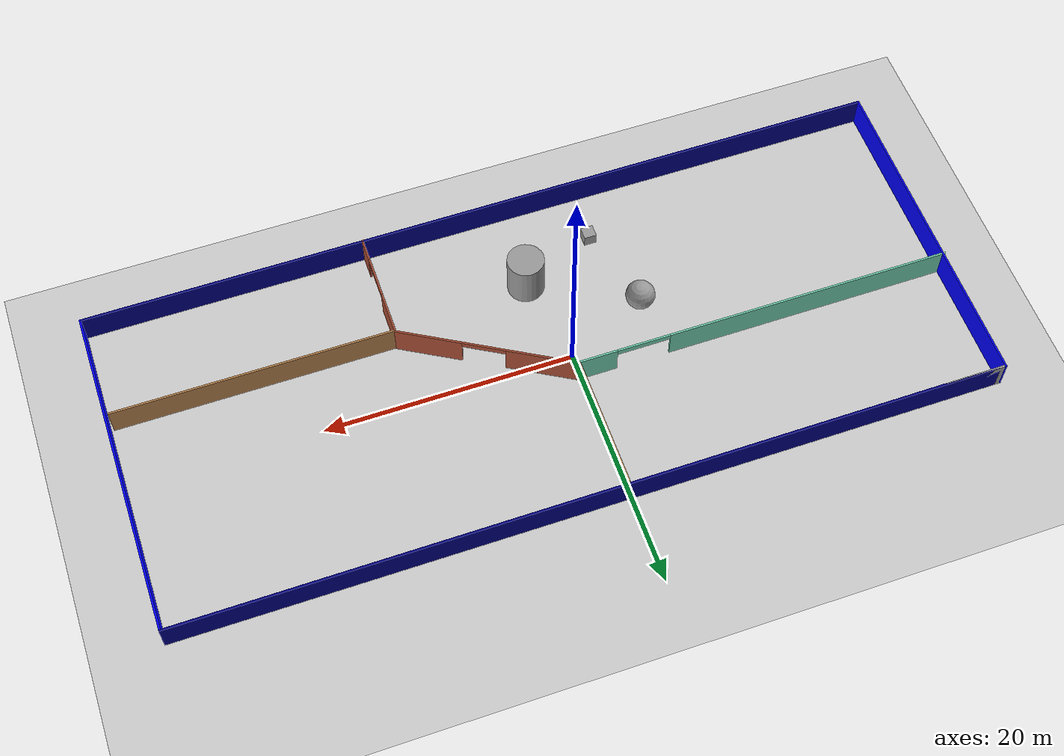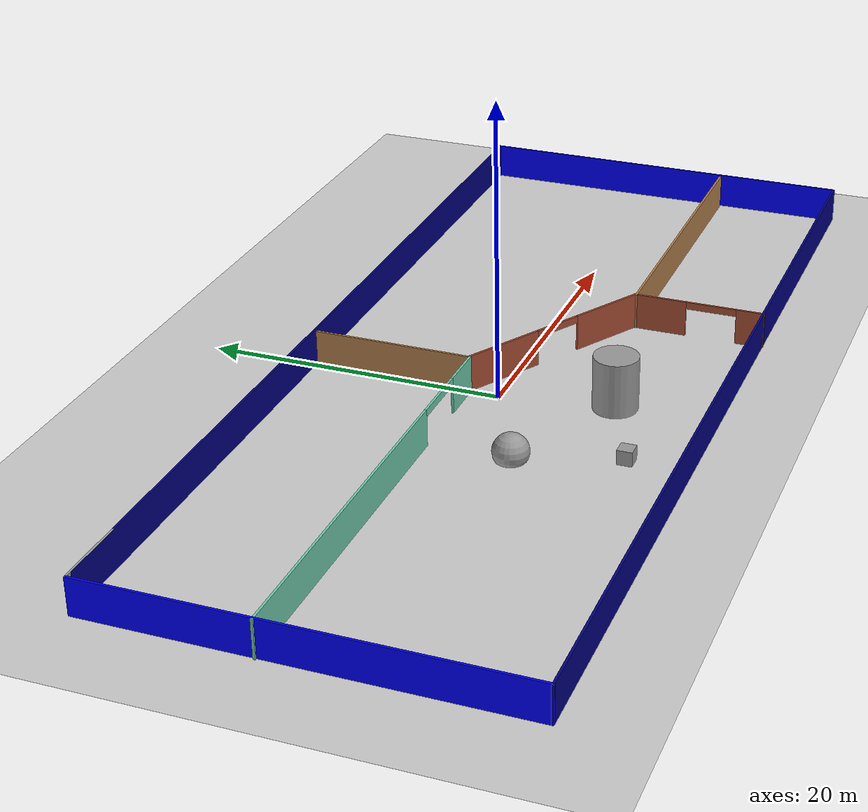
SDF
<sdf version="1.6">
 <world name="default">
  <model name="ground_plane">
   <static>1</static>
   <link name="link">
    <collision name="collision">
     <geometry><plane><normal>0 0 1</normal><size>100 100</size></plane></geometry>
     <surface>
      <contact><collide_bitmask>65535</collide_bitmask></contact>
      <friction><ode><mu>100</mu><mu2>50</mu2></ode></friction>
     </surface>
    </collision>
    <visual name="visual">
     <cast_shadows>0</cast_shadows>
     <geometry><plane><normal>0 0 1</normal><size>100 100</size></plane></geometry>
     <material>
      <script><uri>file://media/materials/scripts/gazebo.material</uri><name>Gazebo/Grey</name></script>
     </material>
    </visual>
   </link>
  </model>
  <model name="new_world">
   <pose>2.44465 -0.642156 0 0 -0 0</pose>
   <link name="Wall_0">
    <collision name="Wall_0_Collision">
     <geometry><box><size>65.25 0.15 2.5</size></box></geometry>
     <pose>0 0 1.25 0 -0 0</pose>
    </collision>
    <visual name="Wall_0_Visual">
     <pose>0 0 1.25 0 -0 0</pose>
     <geometry><box><size>65.25 0.15 2.5</size></box></geometry>
     <material>
      <script><uri>file://media/materials/scripts/gazebo.material</uri><name>Gazebo/Grey</name></script>
      <ambient>0 0 0.498039 1</ambient>
     </material>
     <meta><layer>0</layer></meta>
    </visual>
    <pose>0.3105 13.567 0 0 -0 0</pose>
   </link>
   <link name="Wall_1">
    <collision name="Wall_1_Collision">
     <geometry><box><size>27.25 0.15 2.5</size></box></geometry>
     <pose>0 0 1.25 0 -0 0</pose>
    </collision>
    <visual name="Wall_1_Visual">
     <pose>0 0 1.25 0 -0 0</pose>
     <geometry><box><size>27.25 0.15 2.5</size></box></geometry>
     <material>
      <script><uri>file://media/materials/scripts/gazebo.material</uri><name>Gazebo/Grey</name></script>
      <ambient>0 0 1 1</ambient>
     </material>
     <meta><layer>0</layer></meta>
    </visual>
    <pose>32.8605 0.016999 0 0 0 -1.5708</pose>
   </link>
   <link name="Wall_11">
    <pose>3.95323 -0.96485 0 0 0 -0.532413</pose>
    <visual name="Wall_11_Visual_0">
     <pose>-4.36295 0 1.25 0 -0 0</pose>
     <geometry><box><size>5.84805 0.15 2.5</size></box></geometry>
     <material>
      <script><uri>file://media/materials/scripts/gazebo.material</uri><name>Gazebo/Bricks</name></script>
      <ambient>0.435294 0.796078 0.67451 1</ambient>
     </material>
     <meta><layer>0</layer></meta>
    </visual>
    <collision name="Wall_11_Collision_0">
     <geometry><box><size>5.84805 0.15 2.5</size></box></geometry>
     <pose>-4.36295 0 1.25 0 -0 0</pose>
    </collision>
    <visual name="Wall_11_Visual_1">
     <pose>4.62646 0 1.25 0 -0 0</pose>
     <geometry><box><size>5.32104 0.15 2.5</size></box></geometry>
     <material>
      <script><uri>file://media/materials/scripts/gazebo.material</uri><name>Gazebo/Bricks</name></script>
      <ambient>0.435294 0.796078 0.67451 1</ambient>
     </material>
     <meta><layer>0</layer></meta>
    </visual>
    <collision name="Wall_11_Collision_1">
     <geometry><box><size>5.32104 0.15 2.5</size></box></geometry>
     <pose>4.62646 0 1.25 0 -0 0</pose>
    </collision>
    <visual name="Wall_11_Visual_2">
     <pose>0.26351 0 2.25 0 -0 0</pose>
     <geometry><box><size>3.40487 0.15 0.5</size></box></geometry>
     <material>
      <script><uri>file://media/materials/scripts/gazebo.material</uri><name>Gazebo/Bricks</name></script>
      <ambient>0.435294 0.796078 0.67451 1</ambient>
     </material>
     <meta><layer>0</layer></meta>
    </visual>
    <collision name="Wall_11_Collision_2">
     <geometry><box><size>3.40487 0.15 0.5</size></box></geometry>
     <pose>0.26351 0 2.25 0 -0 0</pose>
    </collision>
   </link>
   <link name="Wall_12">
    <pose>10.167 -9.142 0 0 0 -1.5708</pose>
    <visual name="Wall_12_Visual_0">
     <pose>-2.7074 0 1.25 0 -0 0</pose>
     <geometry><box><size>3.5852 0.15 2.5</size></box></geometry>
     <material>
      <script><uri>file://media/materials/scripts/gazebo.material</uri><name>Gazebo/Bricks</name></script>
      <ambient>0.435294 0.796078 0.67451 1</ambient>
     </material>
     <meta><layer>0</layer></meta>
    </visual>
    <collision name="Wall_12_Collision_0">
     <geometry><box><size>3.5852 0.15 2.5</size></box></geometry>
     <pose>-2.7074 0 1.25 0 -0 0</pose>
    </collision>
    <visual name="Wall_12_Visual_1">
     <pose>3.52476 0 1.25 0 -0 0</pose>
     <geometry><box><size>1.95048 0.15 2.5</size></box></geometry>
     <material>
      <script><uri>file://media/materials/scripts/gazebo.material</uri><name>Gazebo/Bricks</name></script>
      <ambient>0.435294 0.796078 0.67451 1</ambient>
     </material>
     <meta><layer>0</layer></meta>
    </visual>
    <collision name="Wall_12_Collision_1">
     <geometry><box><size>1.95048 0.15 2.5</size></box></geometry>
     <pose>3.52476 0 1.25 0 -0 0</pose>
    </collision>
    <visual name="Wall_12_Visual_2">
     <pose>0.81736 0 2.25 0 -0 0</pose>
     <geometry><box><size>3.46431 0.15 0.5</size></box></geometry>
     <material>
      <script><uri>file://media/materials/scripts/gazebo.material</uri><name>Gazebo/Bricks</name></script>
      <ambient>0.435294 0.796078 0.67451 1</ambient>
     </material>
     <meta><layer>0</layer></meta>
    </visual>
    <collision name="Wall_12_Collision_2">
     <geometry><box><size>3.46431 0.15 0.5</size></box></geometry>
     <pose>0.81736 0 2.25 0 -0 0</pose>
    </collision>
   </link>
   <link name="Wall_14">
    <collision name="Wall_14_Collision">
     <geometry><box><size>22.5002 0.15 2.5</size></box></geometry>
     <pose>0 0 1.25 0 -0 0</pose>
    </collision>
    <visual name="Wall_14_Visual">
     <pose>0 0 1.25 0 -0 0</pose>
     <geometry><box><size>22.5002 0.15 2.5</size></box></geometry>
     <material>
      <script><uri>file://media/materials/scripts/gazebo.material</uri><name>Gazebo/Wood</name></script>
      <ambient>0.435294 0.796078 0.67451 1</ambient>
     </material>
     <meta><layer>0</layer></meta>
    </visual>
    <pose>21.342 -4.717 0 0 -0 0</pose>
   </link>
   <link name="Wall_2">
    <collision name="Wall_2_Collision">
     <geometry><box><size>65.75 0.15 2.5</size></box></geometry>
     <pose>0 0 1.25 0 -0 0</pose>
    </collision>
    <visual name="Wall_2_Visual">
     <pose>0 0 1.25 0 -0 0</pose>
     <geometry><box><size>65.75 0.15 2.5</size></box></geometry>
     <material>
      <script><uri>file://media/materials/scripts/gazebo.material</uri><name>Gazebo/Grey</name></script>
      <ambient>0 0 0.498039 1</ambient>
     </material>
     <meta><layer>0</layer></meta>
    </visual>
    <pose>0.0605 -13.533 0 0 -0 3.14159</pose>
   </link>
   <link name="Wall_3">
    <collision name="Wall_3_Collision">
     <geometry><box><size>27.25 0.15 2.5</size></box></geometry>
     <pose>0 0 1.25 0 -0 0</pose>
    </collision>
    <visual name="Wall_3_Visual">
     <pose>0 0 1.25 0 -0 0</pose>
     <geometry><box><size>27.25 0.15 2.5</size></box></geometry>
     <material>
      <script><uri>file://media/materials/scripts/gazebo.material</uri><name>Gazebo/Grey</name></script>
      <ambient>0 0 1 1</ambient>
     </material>
     <meta><layer>0</layer></meta>
    </visual>
    <pose>-32.7395 0.016999 0 0 -0 1.5708</pose>
   </link>
   <link name="Wall_4">
    <collision name="Wall_4_Collision">
     <geometry><box><size>5 0.15 2.5</size></box></geometry>
     <pose>0 0 1.25 0 -0 0</pose>
    </collision>
    <visual name="Wall_4_Visual">
     <pose>0 0 1.25 0 -0 0</pose>
     <geometry><box><size>5 0.15 2.5</size></box></geometry>
     <material>
      <script><uri>file://media/materials/scripts/gazebo.material</uri><name>Gazebo/Grey</name></script>
      <ambient>1 1 1 1</ambient>
     </material>
     <meta><layer>0</layer></meta>
    </visual>
    <pose>-30.3145 13.567 0 0 -0 0</pose>
   </link>
   <link name="Wall_8">
    <pose>-17.5605 2.6167 0 0 -0 0</pose>
    <visual name="Wall_8_Visual_0">
     <pose>-3.74421 0 1.25 0 -0 0</pose>
     <geometry><box><size>23.2616 0.15 2.5</size></box></geometry>
     <material>
      <script><uri>file://media/materials/scripts/gazebo.material</uri><name>Gazebo/Grey</name></script>
      <ambient>0.435294 0.796078 0.67451 1</ambient>
     </material>
     <meta><layer>0</layer></meta>
    </visual>
    <collision name="Wall_8_Collision_0">
     <geometry><box><size>23.2616 0.15 2.5</size></box></geometry>
     <pose>-3.74421 0 1.25 0 -0 0</pose>
    </collision>
    <visual name="Wall_8_Visual_1">
     <pose>13.7961 0 1.25 0 -0 0</pose>
     <geometry><box><size>3.1579 0.15 2.5</size></box></geometry>
     <material>
      <script><uri>file://media/materials/scripts/gazebo.material</uri><name>Gazebo/Grey</name></script>
      <ambient>0.435294 0.796078 0.67451 1</ambient>
     </material>
     <meta><layer>0</layer></meta>
    </visual>
    <collision name="Wall_8_Collision_1">
     <geometry><box><size>3.1579 0.15 2.5</size></box></geometry>
     <pose>13.7961 0 1.25 0 -0 0</pose>
    </collision>
    <visual name="Wall_8_Visual_2">
     <pose>10.0518 0 2.25 0 -0 0</pose>
     <geometry><box><size>4.33052 0.15 0.5</size></box></geometry>
     <material>
      <script><uri>file://media/materials/scripts/gazebo.material</uri><name>Gazebo/Grey</name></script>
      <ambient>0.435294 0.796078 0.67451 1</ambient>
     </material>
     <meta><layer>0</layer></meta>
    </visual>
    <collision name="Wall_8_Collision_2">
     <geometry><box><size>4.33052 0.15 0.5</size></box></geometry>
     <pose>10.0518 0 2.25 0 -0 0</pose>
    </collision>
   </link>
   <link name="Wall_9">
    <collision name="Wall_9_Collision">
     <geometry><box><size>10.762 0.15 2.5</size></box></geometry>
     <pose>0 0 1.25 0 -0 0</pose>
    </collision>
    <visual name="Wall_9_Visual">
     <pose>0 0 1.25 0 -0 0</pose>
     <geometry><box><size>10.762 0.15 2.5</size></box></geometry>
     <material>
      <script><uri>file://media/materials/scripts/gazebo.material</uri><name>Gazebo/Wood</name></script>
      <ambient>0.435294 0.796078 0.67451 1</ambient>
     </material>
     <meta><layer>0</layer></meta>
    </visual>
    <pose>-2.2605 8.00202 0 0 -0 1.5708</pose>
   </link>
   <static>1</static>
  </model>
  <model name="new_model">
   <link name="link">
    <inertial>
     <mass>1</mass>
     <inertia><ixx>0.145833</ixx><ixy>0</ixy><ixz>0</ixz><iyy>0.145833</iyy><iyz>0</iyz><izz>0.125</izz></inertia>
    </inertial>
    <visual name="visual">
     <geometry><cylinder><radius>1.48246</radius><length>3.70279</length></cylinder></geometry>
     <material>
      <script><name>Gazebo/Grey</name><uri>file://media/materials/scripts/gazebo.material</uri></script>
      <shader type="pixel"><normal_map>__default__</normal_map></shader>
      <ambient>1 1 1 1</ambient>
      <diffuse>1 1 1 1</diffuse>
      <specular>1 1 1 1</specular>
      <emissive>1 0 0 0</emissive>
     </material>
    </visual>
    <collision name="collision">
     <geometry><cylinder><radius>1.48246</radius><length>3.70279</length></cylinder></geometry>
     <surface>
      <friction>
       <ode><mu>1</mu><mu2>1</mu2><fdir1>0 0 0</fdir1><slip1>0</slip1><slip2>0</slip2></ode>
       <torsional>
        <coefficient>1</coefficient>
        <patch_radius>0</patch_radius>
        <surface_radius>0</surface_radius>
        <use_patch_radius>1</use_patch_radius>
        <ode><slip>0</slip></ode>
       </torsional>
      </friction>
      <bounce><restitution_coefficient>0</restitution_coefficient><threshold>1e+06</threshold></bounce>
      <contact>
       <collide_without_contact>0</collide_without_contact>
       <collide_without_contact_bitmask>1</collide_without_contact_bitmask>
       <collide_bitmask>1</collide_bitmask>
       <ode>
        <soft_cfm>0</soft_cfm>
        <soft_erp>0.2</soft_erp>
        <kp>1e+13</kp>
        <kd>1</kd>
        <max_vel>0.01</max_vel>
        <min_depth>0</min_depth>
       </ode>
       <bullet>
        <split_impulse>1</split_impulse>
        <split_impulse_penetration_threshold>-0.01</split_impulse_penetration_threshold>
        <soft_cfm>0</soft_cfm>
        <soft_erp>0.2</soft_erp>
        <kp>1e+13</kp>
        <kd>1</kd>
       </bullet>
      </contact>
     </surface>
    </collision>
   </link>
   <link name="link_0">
    <pose>-8.18563 4.04271 -1.35139 0 -0 3.8e-05</pose>
    <inertial>
     <mass>13.3103</mass>
     <inertia><ixx>7.4755</ixx><ixy>0</ixy><ixz>0</ixz><iyy>7.4755</iyy><iyz>0</iyz><izz>7.4755</izz></inertia>
    </inertial>
    <visual name="visual">
     <geometry><sphere><radius>1.18494</radius></sphere></geometry>
     <material>
      <lighting>1</lighting>
      <script><uri>file://media/materials/scripts/gazebo.material</uri><name>Gazebo/Grey</name></script>
      <shader type="pixel"><normal_map>__default__</normal_map></shader>
      <ambient>1 1 1 1</ambient>
      <diffuse>1 1 1 1</diffuse>
      <specular>1 1 1 1</specular>
      <emissive>0 1 0 1</emissive>
     </material>
    </visual>
    <collision name="collision">
     <geometry><sphere><radius>1.18494</radius></sphere></geometry>
     <surface>
      <friction>
       <ode><mu>1</mu><mu2>1</mu2><fdir1>0 0 0</fdir1><slip1>0</slip1><slip2>0</slip2></ode>
       <torsional>
        <coefficient>1</coefficient>
        <patch_radius>0</patch_radius>
        <surface_radius>0</surface_radius>
        <use_patch_radius>1</use_patch_radius>
        <ode><slip>0</slip></ode>
       </torsional>
      </friction>
      <bounce><restitution_coefficient>0</restitution_coefficient><threshold>1e+06</threshold></bounce>
      <contact>
       <collide_without_contact>0</collide_without_contact>
       <collide_without_contact_bitmask>1</collide_without_contact_bitmask>
       <collide_bitmask>1</collide_bitmask>
       <ode>
        <soft_cfm>0</soft_cfm>
        <soft_erp>0.2</soft_erp>
        <kp>1e+13</kp>
        <kd>1</kd>
        <max_vel>0.01</max_vel>
        <min_depth>0</min_depth>
       </ode>
       <bullet>
        <split_impulse>1</split_impulse>
        <split_impulse_penetration_threshold>-0.01</split_impulse_penetration_threshold>
        <soft_cfm>0</soft_cfm>
        <soft_erp>0.2</soft_erp>
        <kp>1e+13</kp>
        <kd>1</kd>
       </bullet>
      </contact>
     </surface>
    </collision>
   </link>
   <link name="link_1">
    <pose>-6.23799 -2.66856 -1.35139 0 -0 3.8e-05</pose>
    <inertial>
     <mass>1</mass>
     <inertia>
      <ixx>0.166667</ixx>
      <ixy>0</ixy>
      <ixz>0</ixz>
      <iyy>0.166667</iyy>
      <iyz>0</iyz>
      <izz>0.166667</izz>
     </inertia>
    </inertial>
    <visual name="visual">
     <geometry><box><size>1 1 1</size></box></geometry>
     <material>
      <lighting>1</lighting>
      <script><uri>file://media/materials/scripts/gazebo.material</uri><name>Gazebo/Grey</name></script>
      <shader type="pixel"><normal_map>__default__</normal_map></shader>
      <ambient>0.3 0.3 0.3 1</ambient>
      <diffuse>1 1 1 1</diffuse>
      <specular>1 1 1 1</specular>
      <emissive>0 0 1 1</emissive>
     </material>
    </visual>
    <collision name="collision">
     <geometry><box><size>1 1 1</size></box></geometry>
     <surface>
      <friction>
       <ode><mu>1</mu><mu2>1</mu2><fdir1>0 0 0</fdir1><slip1>0</slip1><slip2>0</slip2></ode>
       <torsional>
        <coefficient>1</coefficient>
        <patch_radius>0</patch_radius>
        <surface_radius>0</surface_radius>
        <use_patch_radius>1</use_patch_radius>
        <ode><slip>0</slip></ode>
       </torsional>
      </friction>
      <bounce><restitution_coefficient>0</restitution_coefficient><threshold>1e+06</threshold></bounce>
      <contact>
       <collide_without_contact>0</collide_without_contact>
       <collide_without_contact_bitmask>1</collide_without_contact_bitmask>
       <collide_bitmask>1</collide_bitmask>
       <ode>
        <soft_cfm>0</soft_cfm>
        <soft_erp>0.2</soft_erp>
        <kp>1e+13</kp>
        <kd>1</kd>
        <max_vel>0.01</max_vel>
        <min_depth>0</min_depth>
       </ode>
       <bullet>
        <split_impulse>1</split_impulse>
        <split_impulse_penetration_threshold>-0.01</split_impulse_penetration_threshold>
        <soft_cfm>0</soft_cfm>
        <soft_erp>0.2</soft_erp>
        <kp>1e+13</kp>
        <kd>1</kd>
       </bullet>
      </contact>
     </surface>
    </collision>
   </link>
   <static>0</static>
   <pose>1.27357 -7.45052 1.85139 0 0 -3.8e-05</pose>
  </model>
 </world>
</sdf>
